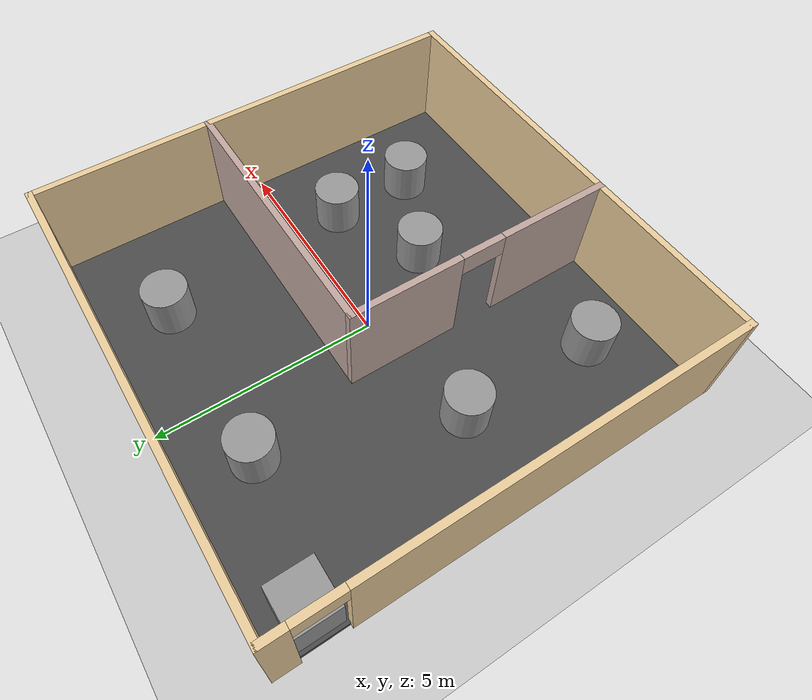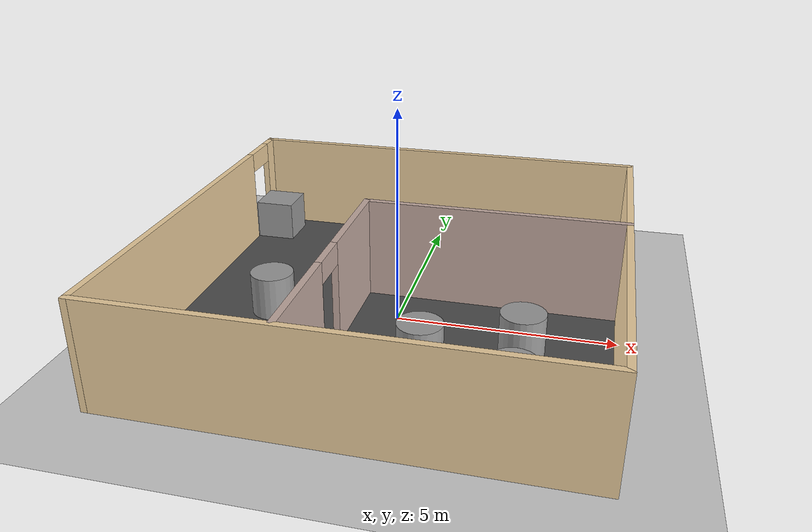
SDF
<sdf version="1.6">
 <world name="default">
  <light name="sun" type="directional">
   <pose>0 0 10 0 -0 0</pose>
   <diffuse>0.8 0.8 0.8 1</diffuse>
   <specular>0.1 0.1 0.1 1</specular>
   <attenuation>
    <range>1000</range>
    <constant>0.9</constant>
    <linear>0.01</linear>
    <quadratic>0.001</quadratic>
   </attenuation>
   <direction>-0.5 0.5 -1</direction>
  </light>
  <model name="ground_plane">
   <static>1</static>
   <link name="link">
    <collision name="collision">
     <geometry><plane><normal>0 0 1</normal><size>100 100</size></plane></geometry>
     <surface><friction><ode><mu>100</mu><mu2>50</mu2></ode></friction></surface>
    </collision>
    <visual name="visual">
     <cast_shadows>0</cast_shadows>
     <geometry><plane><normal>0 0 1</normal><size>100 100</size></plane></geometry>
     <material>
      <script><uri>file://media/materials/scripts/gazebo.material</uri><name>Gazebo/Grey</name></script>
     </material>
    </visual>
   </link>
  </model>
  <gravity>0 0 -9.8</gravity>
  <magnetic_field>6e-06 2.3e-05 -4.2e-05</magnetic_field>
  <atmosphere type="adiabatic"/>
  <physics name="default_physics" default="0" type="ode">
   <max_step_size>0.001</max_step_size>
   <real_time_factor>1</real_time_factor>
   <real_time_update_rate>1000</real_time_update_rate>
  </physics>
  <scene><ambient>0.4 0.4 0.4 1</ambient><background>0.7 0.7 0.7 1</background><shadows>1</shadows></scene>
  <spherical_coordinates>
   <surface_model>EARTH_WGS84</surface_model>
   <latitude_deg>0</latitude_deg>
   <longitude_deg>0</longitude_deg>
   <elevation>0</elevation>
   <heading_deg>0</heading_deg>
  </spherical_coordinates>
  <model name="room">
   <link name="Wall_24">
    <pose>0 5 0 0 -0 0</pose>
    <visual name="Wall_24_Visual">
     <pose>0 0 1.25 0 -0 0</pose>
     <geometry><box><size>10.15 0.15 2.5</size></box></geometry>
     <material>
      <script><uri>file://media/materials/scripts/gazebo.material</uri><name>Gazebo/Grey</name></script>
      <ambient>0.921569 0.807843 0.615686 1</ambient>
      <diffuse>0.7 0.7 0.7 1</diffuse>
      <specular>0.01 0.01 0.01 1</specular>
      <emissive>0 0 0 1</emissive>
     </material>
    </visual>
    <collision name="Wall_24_Collision">
     <pose>0 0 1.25 0 -0 0</pose>
     <geometry><box><size>10.15 0.15 2.5</size></box></geometry>
     <surface>
      <friction>
       <ode><mu>1</mu><mu2>1</mu2><fdir1>0 0 0</fdir1><slip1>0</slip1><slip2>0</slip2></ode>
       <torsional>
        <coefficient>1</coefficient>
        <patch_radius>0</patch_radius>
        <surface_radius>0</surface_radius>
        <use_patch_radius>1</use_patch_radius>
        <ode><slip>0</slip></ode>
       </torsional>
      </friction>
      <bounce><restitution_coefficient>0</restitution_coefficient><threshold>1e+06</threshold></bounce>
      <contact>
       <collide_without_contact>0</collide_without_contact>
       <collide_without_contact_bitmask>1</collide_without_contact_bitmask>
       <collide_bitmask>1</collide_bitmask>
       <ode>
        <soft_cfm>0</soft_cfm>
        <soft_erp>0.2</soft_erp>
        <kp>1e+13</kp>
        <kd>1</kd>
        <max_vel>0.01</max_vel>
        <min_depth>0</min_depth>
       </ode>
       <bullet>
        <split_impulse>1</split_impulse>
        <split_impulse_penetration_threshold>-0.01</split_impulse_penetration_threshold>
        <soft_cfm>0</soft_cfm>
        <soft_erp>0.2</soft_erp>
        <kp>1e+13</kp>
        <kd>1</kd>
       </bullet>
      </contact>
     </surface>
    </collision>
   </link>
   <link name="Wall_25">
    <pose>5 0 0 0 0 -1.5708</pose>
    <visual name="Wall_25_Visual">
     <pose>0 0 1.25 0 -0 0</pose>
     <geometry><box><size>10.15 0.15 2.5</size></box></geometry>
     <material>
      <script><uri>file://media/materials/scripts/gazebo.material</uri><name>Gazebo/Grey</name></script>
      <ambient>0.921569 0.807843 0.615686 1</ambient>
      <diffuse>0.7 0.7 0.7 1</diffuse>
      <specular>0.01 0.01 0.01 1</specular>
      <emissive>0 0 0 1</emissive>
     </material>
    </visual>
    <collision name="Wall_25_Collision">
     <pose>0 0 1.25 0 -0 0</pose>
     <geometry><box><size>10.15 0.15 2.5</size></box></geometry>
     <surface>
      <friction>
       <ode><mu>1</mu><mu2>1</mu2><fdir1>0 0 0</fdir1><slip1>0</slip1><slip2>0</slip2></ode>
       <torsional>
        <coefficient>1</coefficient>
        <patch_radius>0</patch_radius>
        <surface_radius>0</surface_radius>
        <use_patch_radius>1</use_patch_radius>
        <ode><slip>0</slip></ode>
       </torsional>
      </friction>
      <bounce><restitution_coefficient>0</restitution_coefficient><threshold>1e+06</threshold></bounce>
      <contact>
       <collide_without_contact>0</collide_without_contact>
       <collide_without_contact_bitmask>1</collide_without_contact_bitmask>
       <collide_bitmask>1</collide_bitmask>
       <ode>
        <soft_cfm>0</soft_cfm>
        <soft_erp>0.2</soft_erp>
        <kp>1e+13</kp>
        <kd>1</kd>
        <max_vel>0.01</max_vel>
        <min_depth>0</min_depth>
       </ode>
       <bullet>
        <split_impulse>1</split_impulse>
        <split_impulse_penetration_threshold>-0.01</split_impulse_penetration_threshold>
        <soft_cfm>0</soft_cfm>
        <soft_erp>0.2</soft_erp>
        <kp>1e+13</kp>
        <kd>1</kd>
       </bullet>
      </contact>
     </surface>
    </collision>
   </link>
   <link name="Wall_26">
    <pose>0 -5 0 0 -0 3.14159</pose>
    <visual name="Wall_26_Visual">
     <pose>0 0 1.25 0 -0 0</pose>
     <geometry><box><size>10.15 0.15 2.5</size></box></geometry>
     <material>
      <script><uri>file://media/materials/scripts/gazebo.material</uri><name>Gazebo/Grey</name></script>
      <ambient>0.921569 0.807843 0.615686 1</ambient>
      <diffuse>0.7 0.7 0.7 1</diffuse>
      <specular>0.01 0.01 0.01 1</specular>
      <emissive>0 0 0 1</emissive>
     </material>
    </visual>
    <collision name="Wall_26_Collision">
     <pose>0 0 1.25 0 -0 0</pose>
     <geometry><box><size>10.15 0.15 2.5</size></box></geometry>
     <surface>
      <friction>
       <ode><mu>1</mu><mu2>1</mu2><fdir1>0 0 0</fdir1><slip1>0</slip1><slip2>0</slip2></ode>
       <torsional>
        <coefficient>1</coefficient>
        <patch_radius>0</patch_radius>
        <surface_radius>0</surface_radius>
        <use_patch_radius>1</use_patch_radius>
        <ode><slip>0</slip></ode>
       </torsional>
      </friction>
      <bounce><restitution_coefficient>0</restitution_coefficient><threshold>1e+06</threshold></bounce>
      <contact>
       <collide_without_contact>0</collide_without_contact>
       <collide_without_contact_bitmask>1</collide_without_contact_bitmask>
       <collide_bitmask>1</collide_bitmask>
       <ode>
        <soft_cfm>0</soft_cfm>
        <soft_erp>0.2</soft_erp>
        <kp>1e+13</kp>
        <kd>1</kd>
        <max_vel>0.01</max_vel>
        <min_depth>0</min_depth>
       </ode>
       <bullet>
        <split_impulse>1</split_impulse>
        <split_impulse_penetration_threshold>-0.01</split_impulse_penetration_threshold>
        <soft_cfm>0</soft_cfm>
        <soft_erp>0.2</soft_erp>
        <kp>1e+13</kp>
        <kd>1</kd>
       </bullet>
      </contact>
     </surface>
    </collision>
   </link>
   <link name="Wall_30">
    <pose>-5 0 0 0 -0 1.5708</pose>
    <visual name="Wall_30_Visual_1">
     <pose>4.7875 0 1.25 0 -0 0</pose>
     <geometry><box><size>0.575 0.15 2.5</size></box></geometry>
     <material>
      <script><uri>file://media/materials/scripts/gazebo.material</uri><name>Gazebo/Grey</name></script>
      <ambient>0.921569 0.807843 0.615686 1</ambient>
      <diffuse>0.7 0.7 0.7 1</diffuse>
      <specular>0.01 0.01 0.01 1</specular>
      <emissive>0 0 0 1</emissive>
     </material>
    </visual>
    <visual name="Wall_30_Visual_0">
     <pose>-0.7875 0 1.25 0 -0 0</pose>
     <geometry><box><size>8.575 0.15 2.5</size></box></geometry>
     <material>
      <script><uri>file://media/materials/scripts/gazebo.material</uri><name>Gazebo/Grey</name></script>
      <ambient>0.921569 0.807843 0.615686 1</ambient>
      <diffuse>0.7 0.7 0.7 1</diffuse>
      <specular>0.01 0.01 0.01 1</specular>
      <emissive>0 0 0 1</emissive>
     </material>
    </visual>
    <visual name="Wall_30_Visual_2">
     <pose>4 0 2.25 0 -0 0</pose>
     <geometry><box><size>1 0.15 0.5</size></box></geometry>
     <material>
      <script><uri>file://media/materials/scripts/gazebo.material</uri><name>Gazebo/Grey</name></script>
      <ambient>0.921569 0.807843 0.615686 1</ambient>
      <diffuse>0.7 0.7 0.7 1</diffuse>
      <specular>0.01 0.01 0.01 1</specular>
      <emissive>0 0 0 1</emissive>
     </material>
    </visual>
    <collision name="Wall_30_Collision_0">
     <pose>-0.7875 0 1.25 0 -0 0</pose>
     <geometry><box><size>8.575 0.15 2.5</size></box></geometry>
     <surface>
      <friction>
       <ode><mu>1</mu><mu2>1</mu2><fdir1>0 0 0</fdir1><slip1>0</slip1><slip2>0</slip2></ode>
       <torsional>
        <coefficient>1</coefficient>
        <patch_radius>0</patch_radius>
        <surface_radius>0</surface_radius>
        <use_patch_radius>1</use_patch_radius>
        <ode><slip>0</slip></ode>
       </torsional>
      </friction>
      <bounce><restitution_coefficient>0</restitution_coefficient><threshold>1e+06</threshold></bounce>
      <contact>
       <collide_without_contact>0</collide_without_contact>
       <collide_without_contact_bitmask>1</collide_without_contact_bitmask>
       <collide_bitmask>1</collide_bitmask>
       <ode>
        <soft_cfm>0</soft_cfm>
        <soft_erp>0.2</soft_erp>
        <kp>1e+13</kp>
        <kd>1</kd>
        <max_vel>0.01</max_vel>
        <min_depth>0</min_depth>
       </ode>
       <bullet>
        <split_impulse>1</split_impulse>
        <split_impulse_penetration_threshold>-0.01</split_impulse_penetration_threshold>
        <soft_cfm>0</soft_cfm>
        <soft_erp>0.2</soft_erp>
        <kp>1e+13</kp>
        <kd>1</kd>
       </bullet>
      </contact>
     </surface>
    </collision>
    <collision name="Wall_30_Collision_2">
     <pose>4 0 2.25 0 -0 0</pose>
     <geometry><box><size>1 0.15 0.5</size></box></geometry>
     <surface>
      <friction>
       <ode><mu>1</mu><mu2>1</mu2><fdir1>0 0 0</fdir1><slip1>0</slip1><slip2>0</slip2></ode>
       <torsional>
        <coefficient>1</coefficient>
        <patch_radius>0</patch_radius>
        <surface_radius>0</surface_radius>
        <use_patch_radius>1</use_patch_radius>
        <ode><slip>0</slip></ode>
       </torsional>
      </friction>
      <bounce><restitution_coefficient>0</restitution_coefficient><threshold>1e+06</threshold></bounce>
      <contact>
       <collide_without_contact>0</collide_without_contact>
       <collide_without_contact_bitmask>1</collide_without_contact_bitmask>
       <collide_bitmask>1</collide_bitmask>
       <ode>
        <soft_cfm>0</soft_cfm>
        <soft_erp>0.2</soft_erp>
        <kp>1e+13</kp>
        <kd>1</kd>
        <max_vel>0.01</max_vel>
        <min_depth>0</min_depth>
       </ode>
       <bullet>
        <split_impulse>1</split_impulse>
        <split_impulse_penetration_threshold>-0.01</split_impulse_penetration_threshold>
        <soft_cfm>0</soft_cfm>
        <soft_erp>0.2</soft_erp>
        <kp>1e+13</kp>
        <kd>1</kd>
       </bullet>
      </contact>
     </surface>
    </collision>
    <collision name="Wall_30_Collision_1">
     <pose>4.7875 0 1.25 0 -0 0</pose>
     <geometry><box><size>0.575 0.15 2.5</size></box></geometry>
     <surface>
      <friction>
       <ode><mu>1</mu><mu2>1</mu2><fdir1>0 0 0</fdir1><slip1>0</slip1><slip2>0</slip2></ode>
       <torsional>
        <coefficient>1</coefficient>
        <patch_radius>0</patch_radius>
        <surface_radius>0</surface_radius>
        <use_patch_radius>1</use_patch_radius>
        <ode><slip>0</slip></ode>
       </torsional>
      </friction>
      <bounce><restitution_coefficient>0</restitution_coefficient><threshold>1e+06</threshold></bounce>
      <contact>
       <collide_without_contact>0</collide_without_contact>
       <collide_without_contact_bitmask>1</collide_without_contact_bitmask>
       <collide_bitmask>1</collide_bitmask>
       <ode>
        <soft_cfm>0</soft_cfm>
        <soft_erp>0.2</soft_erp>
        <kp>1e+13</kp>
        <kd>1</kd>
        <max_vel>0.01</max_vel>
        <min_depth>0</min_depth>
       </ode>
       <bullet>
        <split_impulse>1</split_impulse>
        <split_impulse_penetration_threshold>-0.01</split_impulse_penetration_threshold>
        <soft_cfm>0</soft_cfm>
        <soft_erp>0.2</soft_erp>
        <kp>1e+13</kp>
        <kd>1</kd>
       </bullet>
      </contact>
     </surface>
    </collision>
   </link>
   <link name="Wall_32">
    <pose>-1 -2 0 0 -0 1.5708</pose>
    <visual name="Wall_32_Visual_0">
     <pose>-1.78673 0 1.25 0 -0 0</pose>
     <geometry><box><size>2.57653 0.15 2.5</size></box></geometry>
     <material>
      <script><uri>file://media/materials/scripts/gazebo.material</uri><name>Gazebo/Grey</name></script>
      <ambient>0.760784 0.662745 0.627451 1</ambient>
      <diffuse>0.7 0.7 0.7 1</diffuse>
      <specular>0.01 0.01 0.01 1</specular>
      <emissive>0 0 0 1</emissive>
     </material>
    </visual>
    <visual name="Wall_32_Visual_1">
     <pose>1.78827 0 1.25 0 -0 0</pose>
     <geometry><box><size>2.57347 0.15 2.5</size></box></geometry>
     <material>
      <script><uri>file://media/materials/scripts/gazebo.material</uri><name>Gazebo/Grey</name></script>
      <ambient>0.760784 0.662745 0.627451 1</ambient>
      <diffuse>0.7 0.7 0.7 1</diffuse>
      <specular>0.01 0.01 0.01 1</specular>
      <emissive>0 0 0 1</emissive>
     </material>
    </visual>
    <visual name="Wall_32_Visual_2">
     <pose>0.001534 0 2.25 0 -0 0</pose>
     <geometry><box><size>1 0.15 0.5</size></box></geometry>
     <material>
      <script><uri>file://media/materials/scripts/gazebo.material</uri><name>Gazebo/Grey</name></script>
      <ambient>0.760784 0.662745 0.627451 1</ambient>
      <diffuse>0.7 0.7 0.7 1</diffuse>
      <specular>0.01 0.01 0.01 1</specular>
      <emissive>0 0 0 1</emissive>
     </material>
    </visual>
    <collision name="Wall_32_Collision_0">
     <pose>-1.78673 0 1.25 0 -0 0</pose>
     <geometry><box><size>2.57653 0.15 2.5</size></box></geometry>
     <surface>
      <friction>
       <ode><mu>1</mu><mu2>1</mu2><fdir1>0 0 0</fdir1><slip1>0</slip1><slip2>0</slip2></ode>
       <torsional>
        <coefficient>1</coefficient>
        <patch_radius>0</patch_radius>
        <surface_radius>0</surface_radius>
        <use_patch_radius>1</use_patch_radius>
        <ode><slip>0</slip></ode>
       </torsional>
      </friction>
      <bounce><restitution_coefficient>0</restitution_coefficient><threshold>1e+06</threshold></bounce>
      <contact>
       <collide_without_contact>0</collide_without_contact>
       <collide_without_contact_bitmask>1</collide_without_contact_bitmask>
       <collide_bitmask>1</collide_bitmask>
       <ode>
        <soft_cfm>0</soft_cfm>
        <soft_erp>0.2</soft_erp>
        <kp>1e+13</kp>
        <kd>1</kd>
        <max_vel>0.01</max_vel>
        <min_depth>0</min_depth>
       </ode>
       <bullet>
        <split_impulse>1</split_impulse>
        <split_impulse_penetration_threshold>-0.01</split_impulse_penetration_threshold>
        <soft_cfm>0</soft_cfm>
        <soft_erp>0.2</soft_erp>
        <kp>1e+13</kp>
        <kd>1</kd>
       </bullet>
      </contact>
     </surface>
    </collision>
    <collision name="Wall_32_Collision_1">
     <pose>1.78827 0 1.25 0 -0 0</pose>
     <geometry><box><size>2.57347 0.15 2.5</size></box></geometry>
     <surface>
      <friction>
       <ode><mu>1</mu><mu2>1</mu2><fdir1>0 0 0</fdir1><slip1>0</slip1><slip2>0</slip2></ode>
       <torsional>
        <coefficient>1</coefficient>
        <patch_radius>0</patch_radius>
        <surface_radius>0</surface_radius>
        <use_patch_radius>1</use_patch_radius>
        <ode><slip>0</slip></ode>
       </torsional>
      </friction>
      <bounce><restitution_coefficient>0</restitution_coefficient><threshold>1e+06</threshold></bounce>
      <contact>
       <collide_without_contact>0</collide_without_contact>
       <collide_without_contact_bitmask>1</collide_without_contact_bitmask>
       <collide_bitmask>1</collide_bitmask>
       <ode>
        <soft_cfm>0</soft_cfm>
        <soft_erp>0.2</soft_erp>
        <kp>1e+13</kp>
        <kd>1</kd>
        <max_vel>0.01</max_vel>
        <min_depth>0</min_depth>
       </ode>
       <bullet>
        <split_impulse>1</split_impulse>
        <split_impulse_penetration_threshold>-0.01</split_impulse_penetration_threshold>
        <soft_cfm>0</soft_cfm>
        <soft_erp>0.2</soft_erp>
        <kp>1e+13</kp>
        <kd>1</kd>
       </bullet>
      </contact>
     </surface>
    </collision>
    <collision name="Wall_32_Collision_2">
     <pose>0.001534 0 2.25 0 -0 0</pose>
     <geometry><box><size>1 0.15 0.5</size></box></geometry>
     <surface>
      <friction>
       <ode><mu>1</mu><mu2>1</mu2><fdir1>0 0 0</fdir1><slip1>0</slip1><slip2>0</slip2></ode>
       <torsional>
        <coefficient>1</coefficient>
        <patch_radius>0</patch_radius>
        <surface_radius>0</surface_radius>
        <use_patch_radius>1</use_patch_radius>
        <ode><slip>0</slip></ode>
       </torsional>
      </friction>
      <bounce><restitution_coefficient>0</restitution_coefficient><threshold>1e+06</threshold></bounce>
      <contact>
       <collide_without_contact>0</collide_without_contact>
       <collide_without_contact_bitmask>1</collide_without_contact_bitmask>
       <collide_bitmask>1</collide_bitmask>
       <ode>
        <soft_cfm>0</soft_cfm>
        <soft_erp>0.2</soft_erp>
        <kp>1e+13</kp>
        <kd>1</kd>
        <max_vel>0.01</max_vel>
        <min_depth>0</min_depth>
       </ode>
       <bullet>
        <split_impulse>1</split_impulse>
        <split_impulse_penetration_threshold>-0.01</split_impulse_penetration_threshold>
        <soft_cfm>0</soft_cfm>
        <soft_erp>0.2</soft_erp>
        <kp>1e+13</kp>
        <kd>1</kd>
       </bullet>
      </contact>
     </surface>
    </collision>
   </link>
   <link name="Wall_33">
    <pose>2 1 0 0 -0 0</pose>
    <visual name="Wall_33_Visual">
     <pose>0 0 1.25 0 -0 0</pose>
     <geometry><box><size>6.15 0.15 2.5</size></box></geometry>
     <material>
      <script><uri>file://media/materials/scripts/gazebo.material</uri><name>Gazebo/Grey</name></script>
      <ambient>0.760784 0.662745 0.627451 1</ambient>
      <diffuse>0.7 0.7 0.7 1</diffuse>
      <specular>0.01 0.01 0.01 1</specular>
      <emissive>0 0 0 1</emissive>
     </material>
    </visual>
    <collision name="Wall_33_Collision">
     <pose>0 0 1.25 0 -0 0</pose>
     <geometry><box><size>6.15 0.15 2.5</size></box></geometry>
     <surface>
      <friction>
       <ode><mu>1</mu><mu2>1</mu2><fdir1>0 0 0</fdir1><slip1>0</slip1><slip2>0</slip2></ode>
       <torsional>
        <coefficient>1</coefficient>
        <patch_radius>0</patch_radius>
        <surface_radius>0</surface_radius>
        <use_patch_radius>1</use_patch_radius>
        <ode><slip>0</slip></ode>
       </torsional>
      </friction>
      <bounce><restitution_coefficient>0</restitution_coefficient><threshold>1e+06</threshold></bounce>
      <contact>
       <collide_without_contact>0</collide_without_contact>
       <collide_without_contact_bitmask>1</collide_without_contact_bitmask>
       <collide_bitmask>1</collide_bitmask>
       <ode>
        <soft_cfm>0</soft_cfm>
        <soft_erp>0.2</soft_erp>
        <kp>1e+13</kp>
        <kd>1</kd>
        <max_vel>0.01</max_vel>
        <min_depth>0</min_depth>
       </ode>
       <bullet>
        <split_impulse>1</split_impulse>
        <split_impulse_penetration_threshold>-0.01</split_impulse_penetration_threshold>
        <soft_cfm>0</soft_cfm>
        <soft_erp>0.2</soft_erp>
        <kp>1e+13</kp>
        <kd>1</kd>
       </bullet>
      </contact>
     </surface>
    </collision>
   </link>
   <link name="link_0">
    <inertial>
     <mass>5000</mass>
     <inertia><ixx>10</ixx><ixy>0</ixy><ixz>0</ixz><iyy>10</iyy><iyz>0</iyz><izz>20</izz></inertia>
    </inertial>
    <visual name="visual">
     <geometry><box><size>10 10 0.2</size></box></geometry>
     <material>
      <lighting>1</lighting>
      <script><uri>file://media/materials/scripts/gazebo.material</uri><name>Gazebo/DarkGrey</name></script>
      <ambient>0.3 0.3 0.3 1</ambient>
      <diffuse>0.7 0.7 0.7 1</diffuse>
      <specular>0.01 0.01 0.01 1</specular>
      <emissive>0 0 0 1</emissive>
      <shader type="vertex"><normal_map>__default__</normal_map></shader>
     </material>
    </visual>
    <collision name="collision">
     <geometry><box><size>10 10 0.2</size></box></geometry>
     <surface>
      <friction>
       <ode><mu>1</mu><mu2>1</mu2><fdir1>0 0 0</fdir1><slip1>0</slip1><slip2>0</slip2></ode>
       <torsional>
        <coefficient>1</coefficient>
        <patch_radius>0</patch_radius>
        <surface_radius>0</surface_radius>
        <use_patch_radius>1</use_patch_radius>
        <ode><slip>0</slip></ode>
       </torsional>
      </friction>
      <bounce><restitution_coefficient>0</restitution_coefficient><threshold>1e+06</threshold></bounce>
      <contact>
       <collide_without_contact>0</collide_without_contact>
       <collide_without_contact_bitmask>1</collide_without_contact_bitmask>
       <collide_bitmask>1</collide_bitmask>
       <ode>
        <soft_cfm>0</soft_cfm>
        <soft_erp>0.2</soft_erp>
        <kp>1e+13</kp>
        <kd>1</kd>
        <max_vel>0.01</max_vel>
        <min_depth>0</min_depth>
       </ode>
       <bullet>
        <split_impulse>1</split_impulse>
        <split_impulse_penetration_threshold>-0.01</split_impulse_penetration_threshold>
        <soft_cfm>0</soft_cfm>
        <soft_erp>0.2</soft_erp>
        <kp>1e+13</kp>
        <kd>1</kd>
       </bullet>
      </contact>
     </surface>
    </collision>
   </link>
   <static>1</static>
  </model>
  <model name="unit_cylinder_0">
   <pose>-2.88891 -0.457164 0.59999 0 -0 6e-05</pose>
   <link name="link">
    <inertial>
     <mass>1</mass>
     <inertia><ixx>0.145833</ixx><ixy>0</ixy><ixz>0</ixz><iyy>0.145833</iyy><iyz>0</iyz><izz>0.125</izz></inertia>
    </inertial>
    <collision name="collision">
     <geometry><cylinder><radius>0.5</radius><length>1</length></cylinder></geometry>
    </collision>
    <visual name="visual">
     <geometry><cylinder><radius>0.5</radius><length>1</length></cylinder></geometry>
     <material>
      <script><name>Gazebo/Grey</name><uri>file://media/materials/scripts/gazebo.material</uri></script>
     </material>
    </visual>
   </link>
  </model>
  <model name="unit_cylinder_1">
   <pose>-2.94154 -3.58564 0.600003 -3e-06 5e-06 -5e-05</pose>
   <link name="link">
    <inertial>
     <mass>1</mass>
     <inertia><ixx>0.145833</ixx><ixy>0</ixy><ixz>0</ixz><iyy>0.145833</iyy><iyz>0</iyz><izz>0.125</izz></inertia>
    </inertial>
    <collision name="collision">
     <geometry><cylinder><radius>0.5</radius><length>1</length></cylinder></geometry>
    </collision>
    <visual name="visual">
     <geometry><cylinder><radius>0.5</radius><length>1</length></cylinder></geometry>
     <material>
      <script><name>Gazebo/Grey</name><uri>file://media/materials/scripts/gazebo.material</uri></script>
     </material>
    </visual>
   </link>
  </model>
  <model name="unit_cylinder_2">
   <pose>2.98124 -1.02928 0.6 0 0 -9e-06</pose>
   <link name="link">
    <inertial>
     <mass>1</mass>
     <inertia><ixx>0.145833</ixx><ixy>0</ixy><ixz>0</ixz><iyy>0.145833</iyy><iyz>0</iyz><izz>0.125</izz></inertia>
    </inertial>
    <collision name="collision">
     <geometry><cylinder><radius>0.5</radius><length>1</length></cylinder></geometry>
    </collision>
    <visual name="visual">
     <geometry><cylinder><radius>0.5</radius><length>1</length></cylinder></geometry>
     <material>
      <script><name>Gazebo/Grey</name><uri>file://media/materials/scripts/gazebo.material</uri></script>
     </material>
    </visual>
   </link>
  </model>
  <model name="unit_cylinder_3">
   <pose>3.00736 -2.9577 0.6 0 0 -5.3e-05</pose>
   <link name="link">
    <inertial>
     <mass>1</mass>
     <inertia><ixx>0.145833</ixx><ixy>0</ixy><ixz>0</ixz><iyy>0.145833</iyy><iyz>0</iyz><izz>0.125</izz></inertia>
    </inertial>
    <collision name="collision">
     <geometry><cylinder><radius>0.5</radius><length>1</length></cylinder></geometry>
    </collision>
    <visual name="visual">
     <geometry><cylinder><radius>0.5</radius><length>1</length></cylinder></geometry>
     <material>
      <script><name>Gazebo/Grey</name><uri>file://media/materials/scripts/gazebo.material</uri></script>
     </material>
    </visual>
   </link>
  </model>
  <model name="unit_cylinder_4">
   <pose>0.958758 -1.96615 0.59999 0 -0 4.7e-05</pose>
   <link name="link">
    <inertial>
     <mass>1</mass>
     <inertia><ixx>0.145833</ixx><ixy>0</ixy><ixz>0</ixz><iyy>0.145833</iyy><iyz>0</iyz><izz>0.125</izz></inertia>
    </inertial>
    <collision name="collision">
     <geometry><cylinder><radius>0.5</radius><length>1</length></cylinder></geometry>
    </collision>
    <visual name="visual">
     <geometry><cylinder><radius>0.5</radius><length>1</length></cylinder></geometry>
     <material>
      <script><name>Gazebo/Grey</name><uri>file://media/materials/scripts/gazebo.material</uri></script>
     </material>
    </visual>
   </link>
  </model>
  <model name="unit_box_0">
   <pose>-4.42499 4.03946 0.600002 -4e-06 -0 6e-06</pose>
   <link name="link">
    <inertial>
     <mass>1</mass>
     <inertia>
      <ixx>0.166667</ixx>
      <ixy>0</ixy>
      <ixz>0</ixz>
      <iyy>0.166667</iyy>
      <iyz>0</iyz>
      <izz>0.166667</izz>
     </inertia>
    </inertial>
    <collision name="collision"><geometry><box><size>1 1 1</size></box></geometry></collision>
    <visual name="visual">
     <geometry><box><size>1 1 1</size></box></geometry>
     <material>
      <script><name>Gazebo/Grey</name><uri>file://media/materials/scripts/gazebo.material</uri></script>
     </material>
    </visual>
   </link>
  </model>
  <model name="unit_cylinder_5">
   <pose>-1.47462 3.51649 0.59999 -1e-06 1e-06 4e-06</pose>
   <link name="link">
    <inertial>
     <mass>1</mass>
     <inertia><ixx>0.145833</ixx><ixy>0</ixy><ixz>0</ixz><iyy>0.145833</iyy><iyz>0</iyz><izz>0.125</izz></inertia>
    </inertial>
    <collision name="collision">
     <geometry><cylinder><radius>0.5</radius><length>1</length></cylinder></geometry>
    </collision>
    <visual name="visual">
     <geometry><cylinder><radius>0.5</radius><length>1</length></cylinder></geometry>
     <material>
      <script><name>Gazebo/Grey</name><uri>file://media/materials/scripts/gazebo.material</uri></script>
     </material>
    </visual>
   </link>
  </model>
  <model name="unit_cylinder_6">
   <pose>2.46757 3.48688 0.599996 -7e-06 -2e-06 -1.9e-05</pose>
   <link name="link">
    <inertial>
     <mass>1</mass>
     <inertia><ixx>0.145833</ixx><ixy>0</ixy><ixz>0</ixz><iyy>0.145833</iyy><iyz>0</iyz><izz>0.125</izz></inertia>
    </inertial>
    <collision name="collision">
     <geometry><cylinder><radius>0.5</radius><length>1</length></cylinder></geometry>
    </collision>
    <visual name="visual">
     <geometry><cylinder><radius>0.5</radius><length>1</length></cylinder></geometry>
     <material>
      <script><name>Gazebo/Grey</name><uri>file://media/materials/scripts/gazebo.material</uri></script>
     </material>
    </visual>
   </link>
  </model>
 </world>
</sdf>
